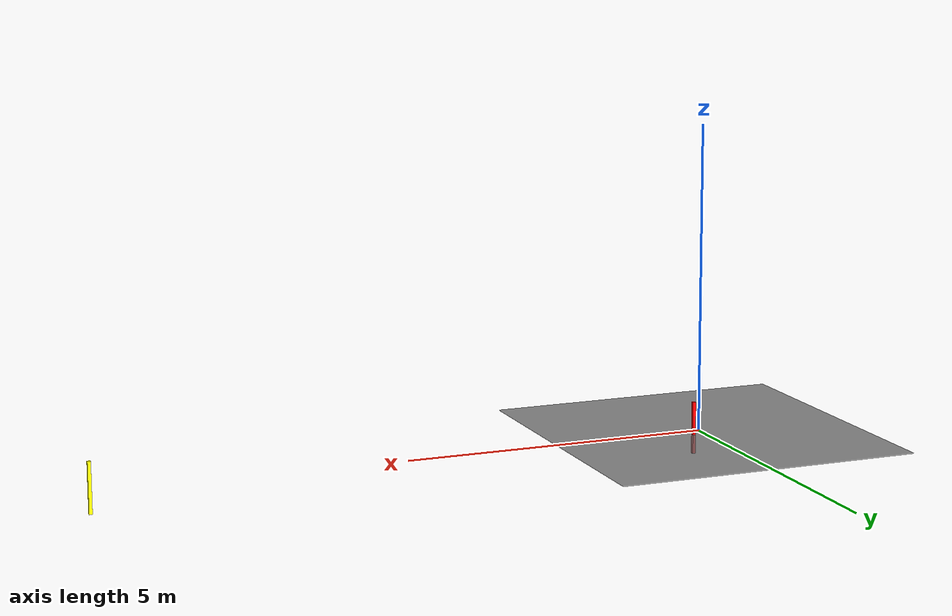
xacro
<?xml version="1.0"?>
<robot xmlns:xacro="http://www.ros.org/wiki/xacro" name="multi_obstacle_scene">

  <!-- Link base fisso al mondo -->
  <link name="world"/>

  <!-- OSTACOLO 1: BOX CENTRALE (Rosso)           -->
  <xacro:arg name="box1_x" default="0.2"/>
  <xacro:arg name="box1_y" default="0.2"/>
  <xacro:arg name="box1_z" default="0.12"/>
  <xacro:arg name="box1_size_x" default="0.05"/>
  <xacro:arg name="box1_size_y" default="0.05"/>
  <xacro:arg name="box1_size_z" default="0.85"/>

  <link name="obstacle_box_central" >
    <visual>
      <origin xyz="0 0 0" rpy="0 0 0"/>
      <geometry>
        <box size="$(arg box1_size_x) $(arg box1_size_y) $(arg box1_size_z)"/>
      </geometry>
      <material name="red">
        <color rgba="1.0 0.0 0.0 1.0"/>
      </material>
    </visual>

    <collision>
      <origin xyz="0 0 0" rpy="0 0 0"/>
      <geometry>
        <box size="$(arg box1_size_x) $(arg box1_size_y) $(arg box1_size_z)"/>
      </geometry>
    </collision>

    <inertial>
      <mass value="0.1"/>
      <inertia ixx="1e-6" iyy="1e-6" izz="1e-6" ixy="0.0" ixz="0.0" iyz="0.0"/>
    </inertial>
  </link>

  <joint name="box_central_to_world" type="fixed">
    <parent link="world"/>
    <child link="obstacle_box_central"/>
    <origin xyz="$(arg box1_x) $(arg box1_y) $(arg box1_z)" rpy="0 0 0"/>
  </joint>

  <gazebo reference="obstacle_box_central">
    <material>Gazebo/Red</material>
    <static>true</static>
    <!-- Contact parameters (Gazebo-classic style; kept for parity even if ignored by gz-sim) -->
    <mu1>1.0</mu1>
    <mu2>1.0</mu2>
    <kp>1e7</kp>
    <kd>1.0</kd>
  </gazebo>

  <!-- OSTACOLO 2: BOX LATERALE (Giallo)          -->
  <xacro:arg name="box2_x" default="10.0"/>
  <xacro:arg name="box2_y" default="0.3"/>
  <xacro:arg name="box2_z" default="0.20"/>
  <xacro:arg name="box2_size_x" default="0.05"/>
  <xacro:arg name="box2_size_y" default="0.05"/>
  <xacro:arg name="box2_size_z" default="0.80"/>

  <link name="obstacle_box_lateral" >
    <visual>
      <origin xyz="0 0 0" rpy="0 0 0"/>
      <geometry>
        <box size="$(arg box2_size_x) $(arg box2_size_y) $(arg box2_size_z)"/>
      </geometry>
      <material name="yellow">
        <color rgba="1.0 1.0 0.0 1.0"/>
      </material>
    </visual>

    <collision>
      <origin xyz="0 0 0" rpy="0 0 0"/>
      <geometry>
        <box size="$(arg box2_size_x) $(arg box2_size_y) $(arg box2_size_z)"/>
      </geometry>
    </collision>

    <inertial>
      <mass value="0.1"/>
      <inertia ixx="1e-6" iyy="1e-6" izz="1e-6" ixy="0.0" ixz="0.0" iyz="0.0"/>
    </inertial>
  </link>

  <joint name="box_lateral_to_world" type="fixed">
    <parent link="world"/>
    <child link="obstacle_box_lateral"/>
    <origin xyz="$(arg box2_x) $(arg box2_y) $(arg box2_z)" rpy="0 0 0"/>
  </joint>

  <gazebo reference="obstacle_box_lateral">
    <material>Gazebo/Yellow</material>
    <static>true</static>
    <!-- Match central obstacle contact params -->
    <mu1>1.0</mu1>
    <mu2>1.0</mu2>
    <kp>1e7</kp>
    <kd>1.0</kd>
  </gazebo>

  <!-- OSTACOLO 3: PAVIMENTO (Grigio)             -->
  <xacro:arg name="ground_x" default="0.0"/>
  <xacro:arg name="ground_y" default="0.0"/>
  <xacro:arg name="ground_z" default="-0.005"/>
  <xacro:arg name="ground_size_x" default="5.0"/>
  <xacro:arg name="ground_size_y" default="5.0"/>
  <xacro:arg name="ground_size_z" default="0.01"/>

  <link name="ground_plane" >
    <visual>
      <geometry>
        <box size="$(arg ground_size_x) $(arg ground_size_y) $(arg ground_size_z)"/>
      </geometry>
      <material name="gray">
        <color rgba="0.5 0.5 0.5 0.8"/>
      </material>
    </visual>

    <collision>
      <geometry>
        <box size="$(arg ground_size_x) $(arg ground_size_y) $(arg ground_size_z)"/>
      </geometry>
    </collision>

    <inertial>
      <mass value="0.1"/>
      <inertia ixx="1e-6" iyy="1e-6" izz="1e-6" ixy="0.0" ixz="0.0" iyz="0.0"/>
    </inertial>
  </link>

  <joint name="ground_to_world" type="fixed">
    <parent link="world"/>
    <child link="ground_plane"/>
    <origin xyz="$(arg ground_x) $(arg ground_y) $(arg ground_z)" rpy="0 0 0"/>
  </joint>

  <gazebo reference="ground_plane">
    <material>Gazebo/Grey</material>
    <static>true</static>
  </gazebo>

</robot>
